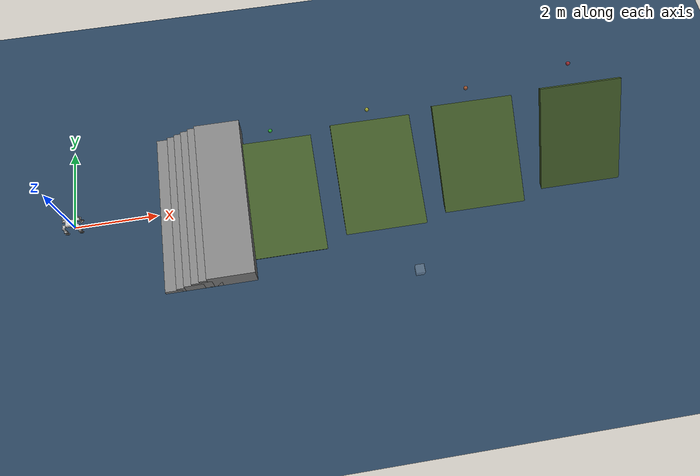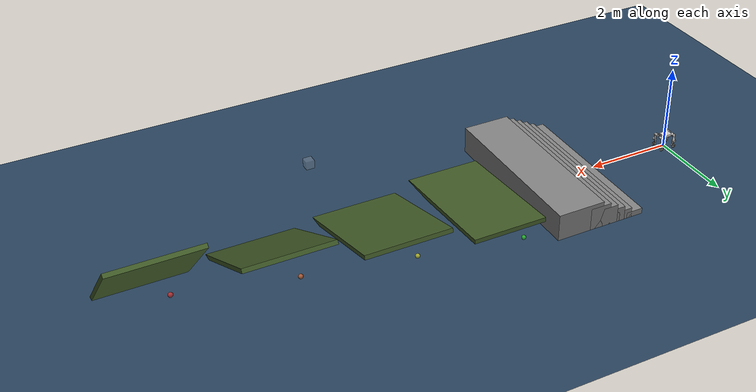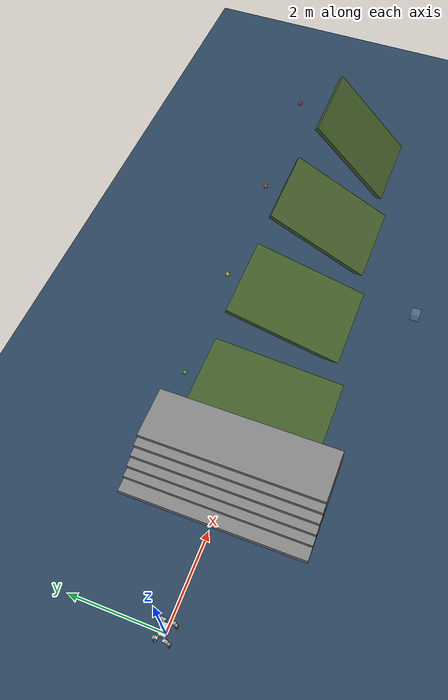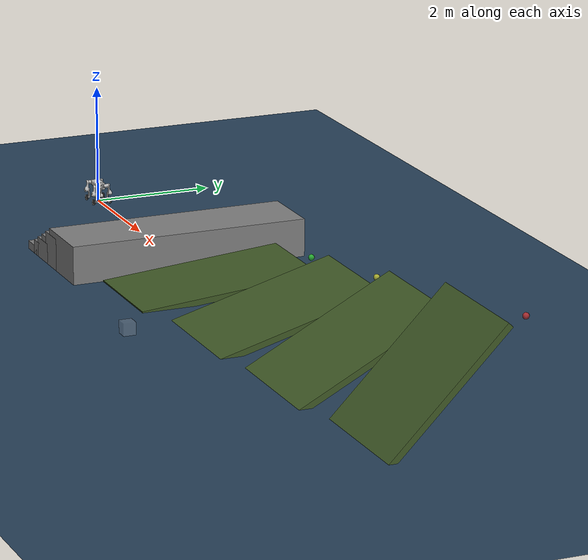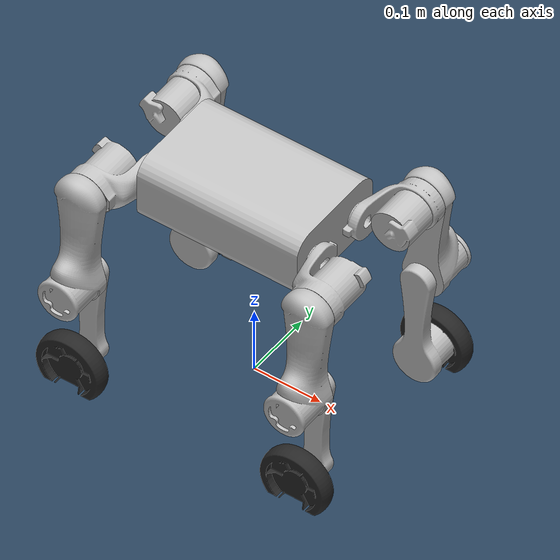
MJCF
<mujoco model="yun1w scene">
  <include file="yun1w.xml"/>

  <statistic center="1.0 0.7 1.0" extent="0.8"/>

  <visual>
    <headlight diffuse="0.6 0.6 0.6" ambient="0.1 0.1 0.1" specular="0.9 0.9 0.9"/>
    <rgba haze="0.15 0.25 0.35 1"/>
    <global azimuth="-140" elevation="-20"/>
  </visual>

  <asset>
    <texture type="skybox" builtin="flat" rgb1="0 0 0" rgb2="0 0 0" width="512" height="3072"/>
    <texture type="2d" name="groundplane" builtin="checker" mark="edge" rgb1="0.2 0.3 0.4" rgb2="0.1 0.2 0.3" markrgb="0.8 0.8 0.8" width="300" height="300"/>
    <material name="groundplane" texture="groundplane" texuniform="true" texrepeat="5 5" reflectance="0.2"/>

    <!-- 斜坡材质 -->
    <texture type="2d" name="slope_texture" builtin="checker" mark="cross" rgb1="0.3 0.4 0.2" rgb2="0.2 0.3 0.1" markrgb="0.9 0.9 0.7" width="100" height="100"/>
    <material name="slope_material" texture="slope_texture" texuniform="true" texrepeat="3 3" reflectance="0.3"/>
  </asset>

  <worldbody>
    <light pos="1 0 3.5" dir="0 0 -1" directional="true"/>
    <geom name="floor" size="0 0 0.05" type="plane" material="groundplane"/>

    <geom pos="2.3 0 0.02" type="box"  size="0.2 2 0.10" quat="1.0 0 0 0"/>
    <geom pos="2.6 0 0.02" type="box"  size="0.22 2 0.2" quat="1.0 0 0 0"/>
    <geom pos="2.8 0 0.02" type="box"  size="0.23 2 0.3" quat="1.0 0 0 0"/>
    <geom pos="3 0 0.02" type="box"  size="0.24 2 0.4" quat="1.0 0 0 0"/>
    <geom pos="3.2 0 0.02" type="box"  size="0.25 2 0.5" quat="1.0 0 0 0"/>
    <geom pos="3.7 0 0.02" type="box"  size="0.56 2 0.6" quat="1.0 0 0 0"/>

    <!-- 新增：不同角度的斜坡 -->

    <!-- 5度斜坡 (坡度 = tan(5°) ≈ 0.087) -->
    <!-- 长度2m，高度0.175m，中心位置调整 -->
    <geom name="slope_5deg" pos="5.0 0 0.0875" type="box" size="1.0 1.5 0.05"
          quat="0.9997 0.0436 0 0" material="slope_material"/>
    <body name="slope_5deg_marker" pos="5.0 1.8 0.2">
      <geom type="sphere" size="0.05" rgba="0.2 0.8 0.2 0.8"/>
    </body>

    <!-- 15度斜坡 (坡度 = tan(15°) ≈ 0.268) -->
    <!-- 长度2m，高度0.536m，中心位置调整 -->
    <geom name="slope_15deg" pos="7.5 0 0.268" type="box" size="1.0 1.5 0.05"
          quat="0.9659 0.1305 0 0" material="slope_material"/>
    <body name="slope_15deg_marker" pos="7.5 1.8 0.6">
      <geom type="sphere" size="0.05" rgba="0.8 0.8 0.2 0.8"/>
    </body>

    <!-- 25度斜坡 (坡度 = tan(25°) ≈ 0.466) -->
    <!-- 长度2m，高度0.933m，中心位置调整 -->
    <geom name="slope_25deg" pos="10.0 0 0.466" type="box" size="1.0 1.5 0.05"
          quat="0.9063 0.2225 0 0" material="slope_material"/>
    <body name="slope_25deg_marker" pos="10.0 1.8 1.0">
      <geom type="sphere" size="0.05" rgba="0.8 0.4 0.2 0.8"/>
    </body>

    <!-- 35度斜坡 (坡度 = tan(35°) ≈ 0.700) -->
    <!-- 长度2m，高度1.4m，中心位置调整 -->
    <geom name="slope_35deg" pos="12.5 0 0.700" type="box" size="1.0 1.5 0.05"
          quat="0.8192 0.3420 0 0" material="slope_material"/>
    <body name="slope_35deg_marker" pos="12.5 1.8 1.5">
      <geom type="sphere" size="0.05" rgba="0.8 0.2 0.2 0.8"/>
    </body>

    <!-- 斜坡说明标签 -->
    <body name="slope_info" pos="8.0 -2.5 0.5">
      <geom type="box" size="0.1 0.1 0.1" rgba="0.9 0.9 0.9 0.1"/>
    </body>

    <!-- 原有的注释掉的更高阶梯 -->

  </worldbody>
</mujoco>

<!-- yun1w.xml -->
<mujoco model="yun1w">
  <compiler angle="radian" meshdir="" autolimits="true" />

  <option cone="elliptic" impratio="100" />

  <default>
    <default class="yun1w">
      <geom friction="1.0 1.0" margin="0.001" solref = "0.005 1" condim="3"/>
      <joint axis="0 1 0" damping="0.1" armature="0.01" frictionloss="0.2"/>
      <motor ctrlrange="-14 14"/>
      <default class="abduction">
        <joint axis="1 0 0" range="-0.8727 0.8727"/>
      </default>
      <default class="hip">
        <default class="front_hip">
          <joint range="-2.7925 2.7925"/>
        </default>
        <default class="back_hip">
          <joint range="-2.7925 2.7925"/>
        </default>
      </default>
      <default class="knee">
        <joint range="-2.7053 2.7053"/>
      </default>
      <default class="visual">
        <geom type="mesh" contype="0" conaffinity="0" group="2"/>
      </default>
      <default class="collision">
        <geom group="3"/>
        <default class="foot">
          <geom size="0.001" pos="0 0 -0.135" priority="1" condim="6"
            friction="1.0 0.02 0.01"/>
        </default>
      </default>
    </default>
  </default>

  <asset>
    <mesh name="base_link" file="./meshes/base_link.STL" />

    <mesh name="fl_hip_Link" file="./meshes/fl_hip_Link.STL" />
    <mesh name="fl_thigh_Link" file="./meshes/fl_thigh_Link.STL" />
    <mesh name="fl_calf_Link" file="./meshes/fl_calf_Link.STL" />
    <mesh name="fl_wheel_Link" file="./meshes/fl_wheel_Link.STL" />

    <mesh name="fr_hip_Link" file="./meshes/fr_hip_Link.STL" />
    <mesh name="fr_thigh_Link" file="./meshes/fr_thigh_Link.STL" />
    <mesh name="fr_calf_Link" file="./meshes/fr_calf_Link.STL" />
    <mesh name="fr_wheel_Link" file="./meshes/fr_wheel_Link.STL" />

    <mesh name="rl_hip_Link" file="./meshes/rl_hip_Link.STL" />
    <mesh name="rl_thigh_Link" file="./meshes/rl_thigh_Link.STL" />
    <mesh name="rl_calf_Link" file="./meshes/rl_calf_Link.STL" />
    <mesh name="rl_wheel_Link" file="./meshes/rl_wheel_Link.STL" />

    <mesh name="rr_hip_Link" file="./meshes/rr_hip_Link.STL" />
    <mesh name="rr_thigh_Link" file="./meshes/rr_thigh_Link.STL" />
    <mesh name="rr_calf_Link" file="./meshes/rr_calf_Link.STL" />
    <mesh name="rr_wheel_Link" file="./meshes/rr_wheel_Link.STL" />
  </asset>

  <worldbody>
    <body name="base_link" pos="0 0 0.3" childclass="yun1w">
      <inertial pos="0.00383944 0.00032322 0.00132292" quat="1 0 0 0"
        mass="2.87129405"
        diaginertia="0.00758086 0.01707296 0.02157473" />
      <freejoint />
      <geom type="mesh" mesh="base_link" rgba="0.752941176470588 0.752941176470588 0.752941176470588 1"/>
      <geom type="mesh" mesh="base_link" class="collision"/>
      <site name="imu" pos="0.0 0 -0.0" />

      <body name="fl_hip_Link" pos="0.1125 0.045 0">
        <inertial pos="0.05181106 0.02890945 -0.00025930" quat="1 0 0 0"
          mass="0.40036239"
          diaginertia="0.00027388 0.00028655 0.00034645" />
        <joint name="fl_hip_Joint" class="abduction" />
        <geom type="mesh" mesh="fl_hip_Link" rgba="0.752941176470588 0.752941176470588 0.752941176470588 1"/>
        <geom type="mesh" mesh="fl_hip_Link" class="collision"/>
        <body name="fl_thigh_Link" pos="0.0575 0.0525 0">
          <inertial pos="-0.00025469 0.04391819 -0.10445464" quat="1 0 0 0"
            mass="0.47156059"
            diaginertia="0.00157037 0.00153438 0.00030139" />
          <joint name="fl_thigh_Joint" class="front_hip" />
          <geom type="mesh" mesh="fl_thigh_Link" rgba="0.752941176470588 0.752941176470588 0.752941176470588 1"/>
          <geom type="mesh" mesh="fl_thigh_Link" class="collision"/>
          <body name="fl_calf_Link" pos="0 0.026 -0.135">
            <inertial pos="-2.5e-06 -0.01533174 -0.06951052"
              quat="1 0 0 0"
              mass="0.08358392" diaginertia="0.00024129 0.00024771 1.351e-05" />
            <joint name="fl_calf_Joint" class="knee" />
            <geom type="mesh" mesh="fl_calf_Link" rgba="0.752941176470588 0.752941176470588 0.752941176470588 1"/>
            <geom type="mesh" mesh="fl_calf_Link" class="collision"/>
            <body name="fl_wheel_Link" pos="0 0.0315 -0.135">
              <inertial pos="0 0.00511591 0"
                quat="0 1 0 0" mass="0.09346820"
                diaginertia="7.631e-05 0.00014526 7.631e-05" />
              <joint name="fl_wheel_Joint" pos="0 0 0" axis="0 1 0" />
              <geom type="mesh" rgba="0.15 0.15 0.15 1" mesh="fl_wheel_Link" pos="0 0.0 0"
                quat="0.0 1.0 0.0 0.0" />
              <geom pos="0 0.0 0" quat="0.0 1.0 0.0 0.0" type="mesh" mesh="fl_wheel_Link" class="foot" />
            </body>
          </body>
        </body>
      </body>

      <body name="fr_hip_Link" pos="0.1125 -0.045 0">
        <inertial pos="0.05151195 -0.02890203 0.00025989" quat="1 0 0 0"
          mass="0.40021841"
          diaginertia="0.00027389 0.00028504 0.00034478" />
        <joint name="fr_hip_Joint" class="abduction" />
        <geom type="mesh" mesh="fr_hip_Link" rgba="0.752941176470588 0.752941176470588 0.752941176470588 1"/>
        <geom type="mesh" mesh="fr_hip_Link" class="collision"/>
        <body name="fr_thigh_Link" pos="0.0575 -0.0525 0">
          <inertial pos="0.00025469 -0.04391819 -0.10445464" quat="1 0 0 0"
            mass="0.47156059"
            diaginertia="0.00157037 0.00153438 0.00030139" />
          <joint name="fr_thigh_Joint" class="front_hip" />
          <geom type="mesh" mesh="fr_thigh_Link" rgba="0.752941176470588 0.752941176470588 0.752941176470588 1"/>
          <geom type="mesh" mesh="fr_thigh_Link" class="collision"/>
          <body name="fr_calf_Link" pos="0 -0.026 -0.135">
            <inertial pos="2.5e-06 0.01533174 -0.06951052"
              quat="1 0 0 0"
              mass="0.08358392" diaginertia="0.00024129 0.00024771 1.351e-05" />
            <joint name="fr_calf_Joint" class="knee" />
            <geom type="mesh" mesh="fr_calf_Link" rgba="0.752941176470588 0.752941176470588 0.752941176470588 1"/>
            <geom type="mesh" mesh="fr_calf_Link" class="collision"/>
            <body name="fr_wheel_Link" pos="0 -0.0315 -0.135">
              <inertial pos="0 -0.00511591 0"
                quat="0 1 0 0" mass="0.0934682"
                diaginertia="7.631e-05 0.00014526 7.631e-05" />
              <joint name="fr_wheel_Joint" pos="0 0 0" axis="0 1 0" />
              <geom type="mesh" rgba="0.15 0.15 0.15 1" mesh="fr_wheel_Link" pos="0 0.0 0"
                quat="0.0 1.0 0.0 0.0" />
              <geom pos="0 0.0 0" quat="0.0 1.0 0.0 0.0" type="mesh" mesh="fr_wheel_Link" class="foot" />
            </body>
          </body>
        </body>
      </body>

      <body name="rl_hip_Link" pos="-0.1125 0.045 0">
        <inertial pos="-0.05151195 0.02890203 0.00025989" quat="1 0 0 0"
          mass="0.40021841"
          diaginertia="0.00027389 0.00028504 0.00034478" />
        <joint name="rl_hip_Joint" class="abduction" />
        <geom type="mesh" mesh="rl_hip_Link" rgba="0.752941176470588 0.752941176470588 0.752941176470588 1"/>
        <geom type="mesh" mesh="rl_hip_Link" class="collision"/>
        <body name="rl_thigh_Link" pos="-0.0575 0.0525 0">
          <inertial pos="-0.00025469 0.04391819 -0.10445464" quat="1 0 0 0"
            mass="0.47156059"
            diaginertia="0.00157037 0.00153438 0.00030139" />
          <joint name="rl_thigh_Joint" class="back_hip" />
          <geom type="mesh" mesh="rl_thigh_Link" rgba="0.752941176470588 0.752941176470588 0.752941176470588 1"/>
          <geom type="mesh" mesh="rl_thigh_Link" class="collision"/>
          <body name="rl_calf_Link" pos="0 0.026 -0.135">
            <inertial pos="-2.5e-06 -0.01533174 -0.06951052"
              quat="1 0 0 0"
              mass="0.08358392" diaginertia="0.00024129 0.00024771 1.351e-05" />
            <joint name="rl_calf_Joint" class="knee" />
            <geom type="mesh" mesh="rl_calf_Link" rgba="0.752941176470588 0.752941176470588 0.752941176470588 1"/>
            <geom type="mesh" mesh="rl_calf_Link" class="collision"/>
            <body name="rl_wheel_Link" pos="0 0.0315 -0.135">
              <inertial pos="0 0.00511591 0"
                quat="0 1 0 0" mass="0.0934682"
                diaginertia="7.631e-05 0.00014526 7.631e-05" />
              <joint name="rl_wheel_Joint" pos="0 0 0" axis="0 1 0" />
              <geom type="mesh" rgba="0.15 0.15 0.15 1" mesh="rl_wheel_Link" pos="0 0.0 0"
                quat="0.0 1.0 0.0 0.0" />
              <geom pos="0 0.0 0" quat="0.0 1.0 0.0 0.0" type="mesh" mesh="rl_wheel_Link" class="foot" />
            </body>
          </body>
        </body>
      </body>

      <body name="rr_hip_Link" pos="-0.1125 -0.045 0">
        <inertial pos="-0.05181106 -0.02890945 -0.0002593" quat="1 0 0 0"
          mass="0.40036239"
          diaginertia="0.00027388 0.00028655 0.00034645" />
        <joint name="rr_hip_Joint" class="abduction" />
        <geom type="mesh" mesh="rr_hip_Link" rgba="0.752941176470588 0.752941176470588 0.752941176470588 1"/>
        <geom type="mesh" mesh="rr_hip_Link" class="collision"/>
        <body name="rr_thigh_Link" pos="-0.0575 -0.0525 0">
          <inertial pos="0.00025469 -0.04391819 -0.10445464" quat="1 0 0 0"
            mass="0.47156059"
            diaginertia="0.00157037 0.00153438 0.00030139" />
          <joint name="rr_thigh_Joint" class="back_hip" />
          <geom type="mesh" mesh="rr_thigh_Link" rgba="0.752941176470588 0.752941176470588 0.752941176470588 1"/>
          <geom type="mesh" mesh="rr_thigh_Link" class="collision"/>
          <body name="rr_calf_Link" pos="0 -0.026 -0.135">
            <inertial pos="2.5e-06 0.01533174 -0.06951052"
              quat="1 0 0 0"
              mass="0.08358392" diaginertia="0.00024129 0.00024771 1.351e-05" />
            <joint name="rr_calf_Joint" class="knee" />
            <geom type="mesh" mesh="rr_calf_Link" rgba="0.752941176470588 0.752941176470588 0.752941176470588 1"/>
            <geom type="mesh" mesh="rr_calf_Link" class="collision"/>
            <body name="rr_wheel_Link" pos="0 -0.0315 -0.135">
              <inertial pos="0 -0.00511591 0"
                quat="0 1 0 0" mass="0.0934682"
                diaginertia="7.631e-05 0.00014526 7.631e-05" />
              <joint name="rr_wheel_Joint" pos="0 0 0" axis="0 1 0" />
              <geom type="mesh" rgba="0.15 0.15 0.15 1" mesh="rr_wheel_Link" pos="0 0.0 0"
                quat="0.0 1.0 0.0 0.0" />
              <geom pos="0 0.0 0" quat="0.0 1.0 0.0 0.0" type="mesh" mesh="rr_wheel_Link" class="foot" />
            </body>
          </body>
        </body>
      </body>
    </body>
  </worldbody>

  <actuator>
    <motor class="abduction" name="fr_hip_Joint" joint="fr_hip_Joint" />
    <motor class="hip" name="fr_thigh_Joint" joint="fr_thigh_Joint" />
    <motor class="knee" name="fr_calf_Joint" joint="fr_calf_Joint" />

    <motor class="abduction" name="fl_hip_Joint" joint="fl_hip_Joint" />
    <motor class="hip" name="fl_thigh_Joint" joint="fl_thigh_Joint" />
    <motor class="knee" name="fl_calf_Joint" joint="fl_calf_Joint" />

    <motor class="abduction" name="rr_hip_Joint" joint="rr_hip_Joint" />
    <motor class="hip" name="rr_thigh_Joint" joint="rr_thigh_Joint" />
    <motor class="knee" name="rr_calf_Joint" joint="rr_calf_Joint" />

    <motor class="abduction" name="rl_hip_Joint" joint="rl_hip_Joint" />
    <motor class="hip" name="rl_thigh_Joint" joint="rl_thigh_Joint" />
    <motor class="knee" name="rl_calf_Joint" joint="rl_calf_Joint" />

    <motor ctrlrange="-15 15" name="fr_wheel_Link" joint="fr_wheel_Joint" />
    <motor ctrlrange="-15 15" name="fl_wheel_Link" joint="fl_wheel_Joint" />
    <motor ctrlrange="-15 15" name="rr_wheel_Link" joint="rr_wheel_Joint" />
    <motor ctrlrange="-15 15" name="rl_wheel_Link" joint="rl_wheel_Joint" />
  </actuator>

  <sensor>

    <jointpos name="fr_hip_pos" joint="fr_hip_Joint" />
    <jointpos name="fr_thigh_pos" joint="fr_thigh_Joint" />
    <jointpos name="fr_calf_pos" joint="fr_calf_Joint" />

    <jointpos name="fl_hip_pos" joint="fl_hip_Joint" />
    <jointpos name="fl_thigh_pos" joint="fl_thigh_Joint" />
    <jointpos name="fl_calf_pos" joint="fl_calf_Joint" />

    <jointpos name="rr_hip_pos" joint="rr_hip_Joint" />
    <jointpos name="rr_thigh_pos" joint="rr_thigh_Joint" />
    <jointpos name="rr_calf_pos" joint="rr_calf_Joint" />

    <jointpos name="rl_hip_pos" joint="rl_hip_Joint" />
    <jointpos name="rl_thigh_pos" joint="rl_thigh_Joint" />
    <jointpos name="rl_calf_pos" joint="rl_calf_Joint" />

    <jointpos name="fr_wheel_pos" joint="fr_wheel_Joint" />
    <jointpos name="fl_wheel_pos" joint="fl_wheel_Joint" />
    <jointpos name="rr_wheel_pos" joint="rr_wheel_Joint" />
    <jointpos name="rl_wheel_pos" joint="rl_wheel_Joint" />

    <jointvel name="fr_hip_vel" joint="fr_hip_Joint" />
    <jointvel name="fr_thigh_vel" joint="fr_thigh_Joint" />
    <jointvel name="fr_calf_vel" joint="fr_calf_Joint" />

    <jointvel name="fl_hip_vel" joint="fl_hip_Joint" />
    <jointvel name="fl_thigh_vel" joint="fl_thigh_Joint" />
    <jointvel name="fl_calf_vel" joint="fl_calf_Joint" />

    <jointvel name="rr_hip_vel" joint="rr_hip_Joint" />
    <jointvel name="rr_thigh_vel" joint="rr_thigh_Joint" />
    <jointvel name="rr_calf_vel" joint="rr_calf_Joint" />

    <jointvel name="rl_hip_vel" joint="rl_hip_Joint" />
    <jointvel name="rl_thigh_vel" joint="rl_thigh_Joint" />
    <jointvel name="rl_calf_vel" joint="rl_calf_Joint" />

    <jointvel name="fr_wheel_vel" joint="fr_wheel_Joint" noise="0.0"/>
    <jointvel name="fl_wheel_vel" joint="fl_wheel_Joint" noise="0.0"/>
    <jointvel name="rr_wheel_vel" joint="rr_wheel_Joint" noise="0.0"/>
    <jointvel name="rl_wheel_vel" joint="rl_wheel_Joint" noise="0.0"/>

    <jointactuatorfrc name="fr_hip_torque" joint="fr_hip_Joint" noise="0.01" />
    <jointactuatorfrc name="fr_thigh_torque" joint="fr_thigh_Joint" noise="0.01" />
    <jointactuatorfrc name="fr_calf_torque" joint="fr_calf_Joint" noise="0.01" />

    <jointactuatorfrc name="fl_hip_torque" joint="fl_hip_Joint" noise="0.01" />
    <jointactuatorfrc name="fl_thigh_torque" joint="fl_thigh_Joint" noise="0.01" />
    <jointactuatorfrc name="fl_calf_torque" joint="fl_calf_Joint" noise="0.01" />

    <jointactuatorfrc name="rr_hip_torque" joint="rr_hip_Joint" noise="0.01" />
    <jointactuatorfrc name="rr_thigh_torque" joint="rr_thigh_Joint" noise="0.01" />
    <jointactuatorfrc name="rr_calf_torque" joint="rr_calf_Joint" noise="0.01" />

    <jointactuatorfrc name="rl_hip_torque" joint="rl_hip_Joint" noise="0.01" />
    <jointactuatorfrc name="rl_thigh_torque" joint="rl_thigh_Joint" noise="0.01" />
    <jointactuatorfrc name="rl_calf_torque" joint="rl_calf_Joint" noise="0.01" />

    <jointactuatorfrc name="fr_wheel_torque" joint="fr_wheel_Joint" />
    <jointactuatorfrc name="fl_wheel_torque" joint="fl_wheel_Joint" />
    <jointactuatorfrc name="rr_wheel_torque" joint="rr_wheel_Joint" />
    <jointactuatorfrc name="rl_wheel_torque" joint="rl_wheel_Joint" />

    <framequat name="imu_quat" objtype="site" objname="imu" />
    <gyro name="imu_gyro" site="imu" />
    <accelerometer name="imu_acc" site="imu" />

    <framepos name="frame_pos" objtype="site" objname="imu" />
    <framelinvel name="frame_vel" objtype="site" objname="imu" />
  </sensor>

  <keyframe>
  </keyframe>
</mujoco>
